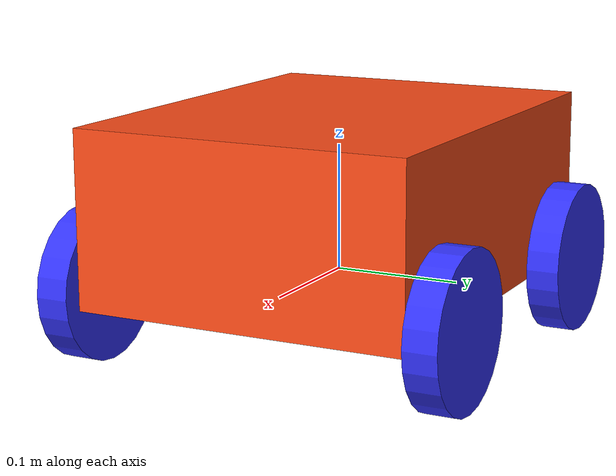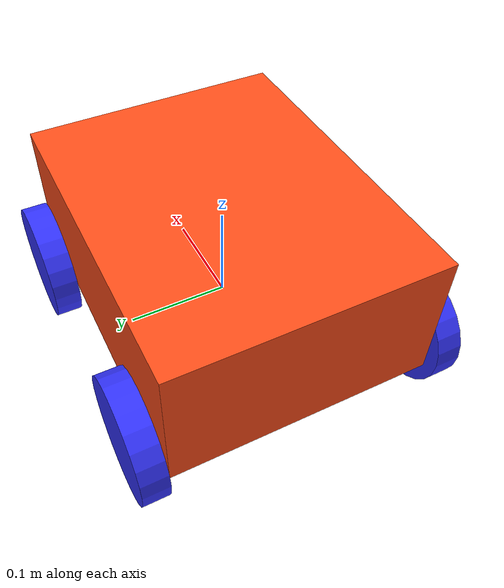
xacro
<?xml version="1.0"?>
<robot xmlns:xacro="http://www.ros.org/wiki/xacro">

    <xacro:include filename="inertial_macros.xacro" />

    <!-- CHASSIS  CONF-->
    <xacro:property name="chassis_length" value="0.335"/>
    <xacro:property name="chassis_width" value="0.265"/>
    <xacro:property name="chassis_height" value="0.138"/>
    <xacro:property name="chassis_mass" value="1.5"/>

    <!--  ROUES CONF -->
    <xacro:property name="wheel_radius" value="0.06"/>
    <xacro:property name="wheel_thickness" value="0.026"/>
    <xacro:property name="wheel_mass" value="0.09"/>
    <xacro:property name="wheel_offset_z" value="0.01"/>

    <!-- POSITIONS DES ROUES  -->
    <xacro:property name="wheel_offset_x_front" value="0.120"/>
    <xacro:property name="wheel_offset_x_rear" value="-0.120"/>
    <xacro:property name="wheel_offset_y" value="0.1485"/>

    <material name="white">
        <color rgba="1 1 1 1" />
    </material>

    <material name="orange">
        <color rgba="1 0.3 0.1 1"/>
    </material>

    <material name="blue">
        <color rgba="0.2 0.2 1 1"/>
    </material>

    <material name="black">
        <color rgba="0 0 0 1"/>
    </material>

    <material name="red">
        <color rgba="1 0 0 1"/>
    </material>

    <link name="base_link">
    </link>

    <joint name="base_footprint_joint" type="fixed">
        <parent link="base_link"/>
        <child link="base_footprint"/>
        <origin xyz="0 0 0" rpy="0 0 0"/>
    </joint>

    <link name="base_footprint">
    </link>

    <joint name="chassis_joint" type="fixed">
        <parent link="base_link"/>
        <child link="chassis"/>
        <origin xyz="0 0 ${-wheel_offset_z}"/>
    </joint>

    <link name="chassis">
        <visual>
            <origin xyz="0 0 ${chassis_height/2}"/>
            <geometry>
                <box size="${chassis_length} ${chassis_width} ${chassis_height}"/>
            </geometry>
            <material name="orange"/>
        </visual>
        <collision>
            <origin xyz="0 0 ${chassis_height/2}"/>
            <geometry>
                <box size="${chassis_length} ${chassis_width} ${chassis_height}"/>
            </geometry>
        </collision>
        <xacro:inertial_box mass="${chassis_mass}" x="${chassis_length}" y="${chassis_width}" z="${chassis_height}">
            <origin xyz="0 0 ${chassis_height/2}" rpy="0 0 0"/>
        </xacro:inertial_box>
    </link>

    <!-- MACRO POUR CRÉER UNE ROUE -->
    <xacro:macro name="wheel" params="prefix x_pos y_pos">
        <joint name="${prefix}_wheel_joint" type="continuous">
            <parent link="base_link"/>
            <child link="${prefix}_wheel"/>
            <origin xyz="${x_pos} ${y_pos} 0" rpy="${-pi/2} 0 0" />
            <axis xyz="0 0 1"/>
        </joint>

        <link name="${prefix}_wheel">
            <visual>
                <geometry>
                    <cylinder radius="${wheel_radius}" length="${wheel_thickness}"/>
                </geometry>
                <material name="blue"/>
            </visual>
            <collision>
                <geometry>
                    <sphere radius="${wheel_radius}"/>
                </geometry>
            </collision>
            <xacro:inertial_cylinder mass="${wheel_mass}" length="${wheel_thickness}" radius="${wheel_radius}">
                <origin xyz="0 0 0" rpy="0 0 0"/>
            </xacro:inertial_cylinder>
        </link>
    </xacro:macro>

    <!-- Roues avant -->
    <xacro:wheel prefix="front_left" x_pos="${wheel_offset_x_front}" y_pos="${wheel_offset_y}"/>
    <xacro:wheel prefix="front_right" x_pos="${wheel_offset_x_front}" y_pos="${-wheel_offset_y}"/>

    <!-- Roues arrière -->
    <xacro:wheel prefix="rear_left" x_pos="${wheel_offset_x_rear}" y_pos="${wheel_offset_y}"/>
    <xacro:wheel prefix="rear_right" x_pos="${wheel_offset_x_rear}" y_pos="${-wheel_offset_y}"/>

</robot>

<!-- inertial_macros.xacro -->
<robot xmlns:xacro="http://www.ros.org/wiki/xacro" >

    <!-- Specify some standard inertial calculations https://en.wikipedia.org/wiki/List_of_moments_of_inertia -->
    <!-- These make use of xacro's mathematical functionality -->

    <xacro:macro name="inertial_sphere" params="mass radius *origin">
        <inertial>
            <xacro:insert_block name="origin"/>
            <mass value="${mass}" />
            <inertia ixx="${(2/5) * mass * (radius*radius)}" ixy="0.0" ixz="0.0"
                    iyy="${(2/5) * mass * (radius*radius)}" iyz="0.0"
                    izz="${(2/5) * mass * (radius*radius)}" />
        </inertial>
    </xacro:macro>

    <xacro:macro name="inertial_box" params="mass x y z *origin">
        <inertial>
            <xacro:insert_block name="origin"/>
            <mass value="${mass}" />
            <inertia ixx="${(1/12) * mass * (y*y+z*z)}" ixy="0.0" ixz="0.0"
                    iyy="${(1/12) * mass * (x*x+z*z)}" iyz="0.0"
                    izz="${(1/12) * mass * (x*x+y*y)}" />
        </inertial>
    </xacro:macro>

    <xacro:macro name="inertial_cylinder" params="mass length radius *origin">
        <inertial>
            <xacro:insert_block name="origin"/>
            <mass value="${mass}" />
            <inertia ixx="${(1/12) * mass * (3*radius*radius + length*length)}" ixy="0.0" ixz="0.0"
                    iyy="${(1/12) * mass * (3*radius*radius + length*length)}" iyz="0.0"
                    izz="${(1/2) * mass * (radius*radius)}" />
        </inertial>
    </xacro:macro>

</robot>
